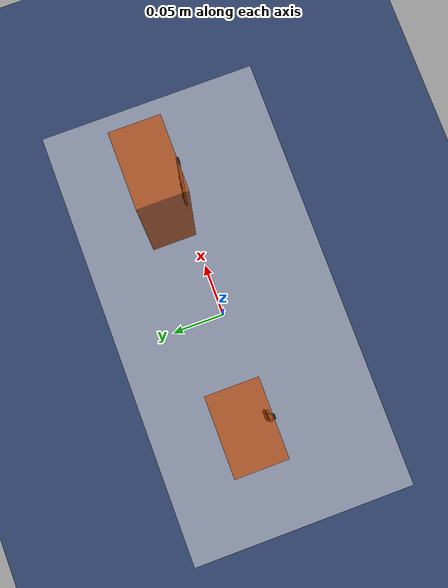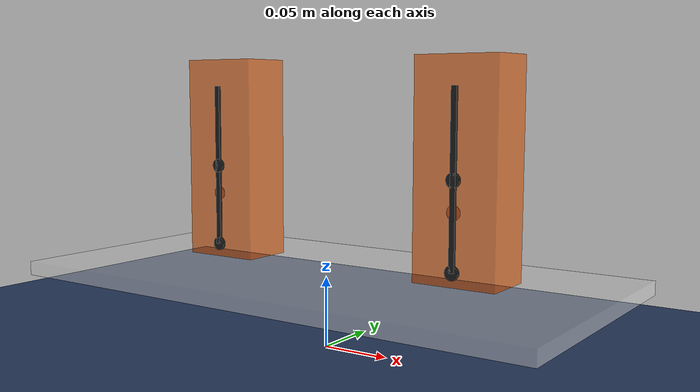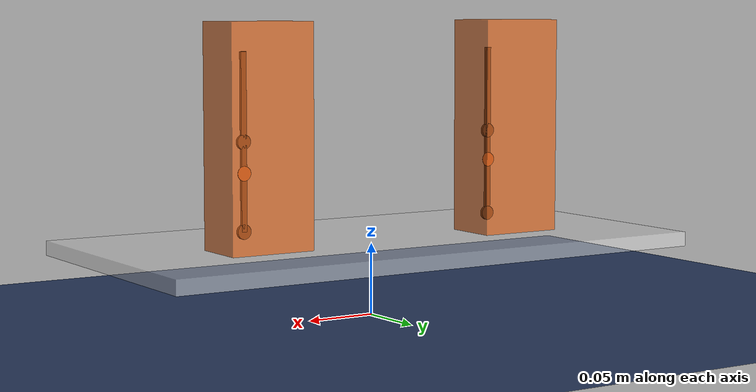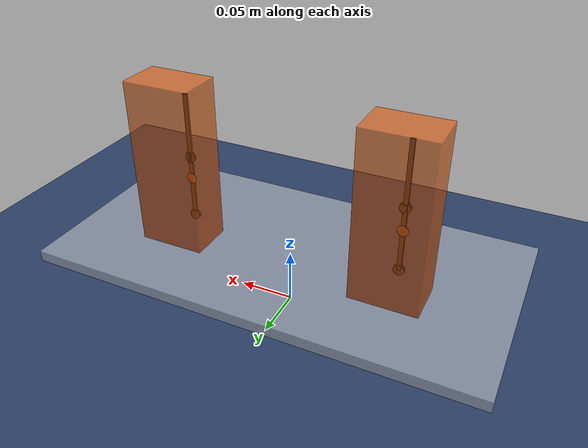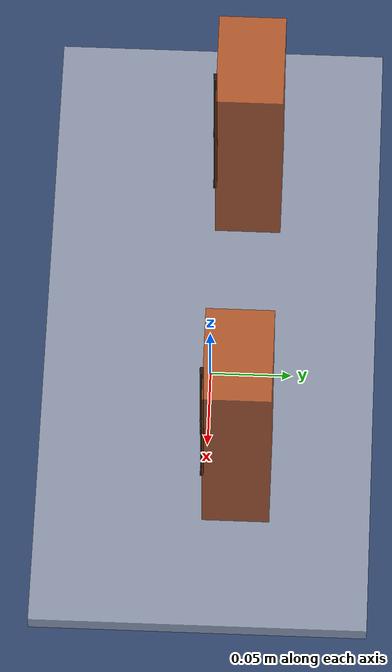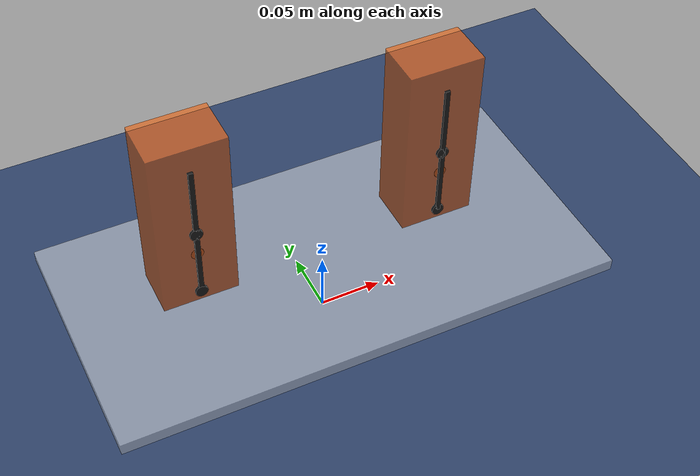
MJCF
<mujoco model="pendulum">
    <option gravity="0 0 -9.81" integrator="implicit" timestep="0.0001" iterations="1000" solver="Newton" tolerance="1e-18" noslip_tolerance="1e-9" o_solref="0.001 1" o_solimp="0.5 0.999 0.0001 0.1 6">
    </option>

    <visual>
        <global offheight="2160" offwidth="3840"/>
        <rgba haze=".3 .3 .3 1"/>
    </visual>

    <asset>
        <texture type="skybox" builtin="gradient" rgb1="0.6 0.6 0.6" rgb2="0 0 0" width="512" height="512"/>
        <texture name="texplane" type="2d" builtin="checker" rgb1=".15 .2 .35" rgb2=".2 .3 .45" width="512" height="512" mark="cross" markrgb=".8 .8 .8"/>
        <material name="matplane" reflectance="0.3" texture="texplane" texrepeat="10 10" texuniform="true"/>

        <material name="plate" rgba=".9 .9 .9 .5"/>
        <material name="pendulum" rgba=".9 .4 .1 .7"/>
        <material name="mass" rgba=".1 .1 .1 1"/>
    </asset>

    <default>
        <geom condim="3" friction="1 0.005 0.0001"/>
    </default>

    <worldbody>
        <camera name="fixed" pos="0.0 -0.8 0.15" xyaxes="1 0 0 0 0.1 1"/>

        <geom name="floor" pos="0 0 0" size="0 0 1" type="plane" material="matplane"/>
        <light directional="true" diffuse=".8 .8 .8" specular=".2 .2 .2" pos="0 0 5" dir="0 0 -1"/>

        <body pos="0 0 0.05">
            <joint name="plate" type="slide" axis="1 0 0" pos="0 0 0" stiffness="0"/>
            <geom name="plate" type="box" pos="0 0 0" size="0.2 0.1 0.005" material="plate" mass="0.1"/>
        </body>

        <body pos="-0.1 0 0.055">
            <joint name="p1boxX" type="slide" axis="1 0 0" pos="0 0 0"/>
            <joint name="p1boxZ" type="slide" axis="0 0 1" pos="0 0 0"/>

            <geom name="p1box" type="box" pos="0 0.02 0.075" size="0.03 0.02 0.075" material="pendulum" mass="0.1"/>

            <body pos="0 0 0.05">
                <joint name="p1hinge" type="hinge" pos="0 0 -0.001" axis="0 1 0"/>
                <geom name="p1hinge" type="cylinder" pos="0 -0.0001 -0.001" size="0.005 0.0001" zaxis="0 1 0" rgba=".7 .3 .1 1" mass= "0.001"/>

                <geom name="p1stick" type="box" pos="0 -0.0012 0.02" size="0.002 0.001 0.06" material="mass" mass="0.001"/>

                <geom name="p1massLower" type="cylinder" pos="0 -0.0012 -0.04" size="0.005 0.001" zaxis="0 1 0" material="mass" mass="0.3"/>
                <geom name="p1massUpper" type="cylinder" pos="0 -0.0012 0.02" size="0.005 0.001" zaxis="0 1 0" material="mass" mass="0.1"/>
            </body>
        </body>

        <body pos="0.1 0 0.055">
            <joint name="p2boxX" type="slide" axis="1 0 0" pos="0 0 0"/>
            <joint name="p2boxZ" type="slide" axis="0 0 1" pos="0 0 0"/>

            <geom name="p2box" type="box" pos="0 0.02 0.075" size="0.03 0.02 0.075" material="pendulum" mass="0.1"/>

            <body pos="0 0 0.05">
                <joint name="p2hinge" type="hinge" pos="0 0 -0.001" axis="0 1 0"/>
                <geom name="p2hinge" type="cylinder" pos="0 -0.0001 -0.001" size="0.005 0.0001" zaxis="0 1 0" rgba=".7 .3 .1 1" mass= "0.001"/>

                <geom name="p2stick" type="box" pos="0 -0.0012 0.02" size="0.002 0.001 0.06" material="mass" mass="0.001"/>

                <geom name="p2massLower" type="cylinder" pos="0 -0.0012 -0.04" size="0.005 0.001" zaxis="0 1 0" material="mass" mass="0.3"/>
                <geom name="p2massUpper" type="cylinder" pos="0 -0.0012 0.02" size="0.005 0.001" zaxis="0 1 0" material="mass" mass="0.1"/>
            </body>
        </body>

    </worldbody>

    <keyframe>
        <key name="0" qpos="0 0 0 0 0 0 0"/>
        <key name="1" qpos="0 0 0 0.1 0 0 0.4"/>
        <key name="2" qpos="0 0 0 -0.7 0 0 0.4"/>
    </keyframe>
</mujoco>
